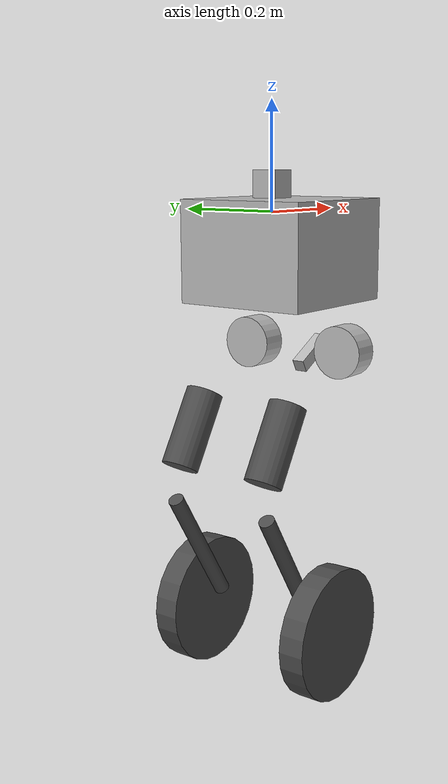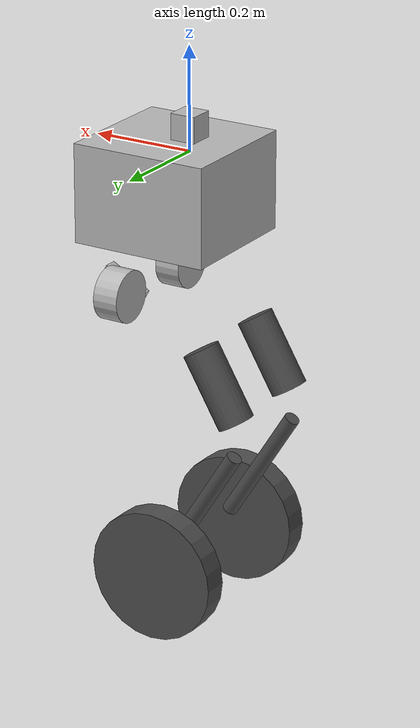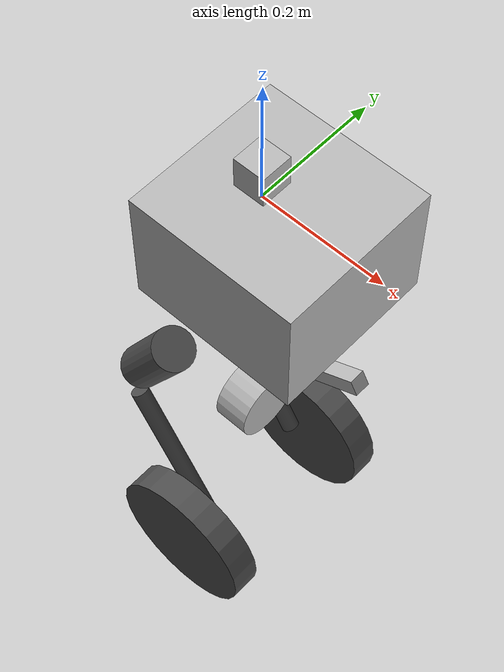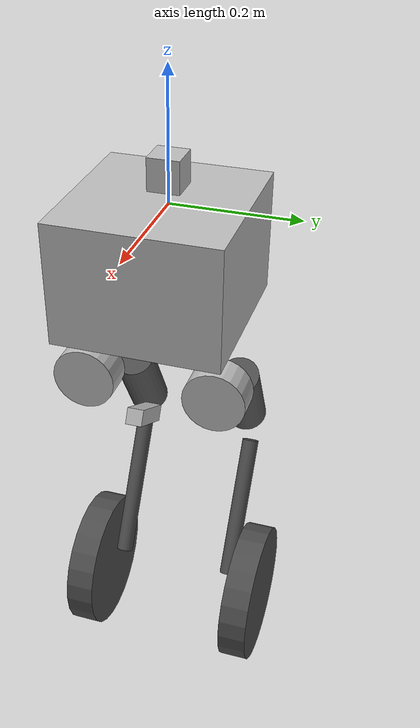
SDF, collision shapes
<sdf version='1.7'>
  <model name='wheel_biped'>
    <link name='base_Link'>
      <inertial>
        <pose>0.04576 0.00014 -0.16398 0 -0 0</pose>
        <mass>9.585</mass>
        <inertia>
          <ixx>0.14011</ixx>
          <ixy>0.000534939</ixy>
          <ixz>0.0281841</ixz>
          <iyy>0.110641</iyy>
          <iyz>-2.7278e-05</iyz>
          <izz>0.0989445</izz>
        </inertia>
      </inertial>
      <collision name='base_Link_collision'>
        <pose>0.03 0 -0.072 0 -0 0</pose>
        <geometry>
          <box>
            <size>0.27 0.26 0.19</size>
          </box>
        </geometry>
      </collision>
      <visual name='base_Link_visual'>
        <pose>0 0 0 0 -0 0</pose>
        <geometry>
          <mesh>
            <scale>1 1 1</scale>
            <uri>model://WF_TRON1A/meshes/base_Link.STL</uri>
          </mesh>
        </geometry>
      </visual>
    </link>
    <include>
        <uri>model://D435i</uri>
        <pose>0.139465 0.0047 -0.281286 2.63457 0 1.5708</pose>
        <name>D435i</name>
    </include>
    <joint name="d435i_joint" type="fixed">
        <parent>base_Link</parent>
        <child>D435i::camera_link</child>
        <pose>0.13223 0.0047 -0.26826 0 1.06378 0</pose>
    </joint>

    <link name = "lidar_Link">
      <pose>0.0 0.0 0.05 0.0 0.0 3.14159</pose>
      <inertial>
        <mass>0.1</mass>
        <inertia>
          <ixx>0.0001</ixx>
          <ixy>0.0</ixy>
          <ixz>0.0</ixz>
          <iyy>0.0001</iyy>
          <iyz>0.0</iyz>
          <izz>0.0001</izz>
        </inertia>
      </inertial>
      <collision name = "lidar_collision">
        <geometry>
          <box>
            <size>0.05 0.05 0.05</size>
          </box>
        </geometry>
      </collision>
      <visual name='lidar_visual'>
        <pose>0 0 0 0 -0 0</pose>
        <geometry>
          <mesh>
            <scale>1 1 1</scale>
            <uri>model://livox/livox_mid-360-90x.dae</uri>
          </mesh>
        </geometry>
      </visual>

      <sensor type="ray" name="laser_livox">
        <pose>0 0 0.05 0 0 3.14159</pose>
        <visualize>true</visualize>
        <always_on>True</always_on>
        <update_rate>10</update_rate>
        <!-- This ray plgin is only for visualization. -->
        <plugin name="gazebo_ros_laser_controller" filename="liblivox_laser_simulation.so">
			  <ray>
			  <scan>
				  <horizontal>
				    <samples>100</samples>
				    <resolution>1</resolution>
				    <min_angle>-3.1415926535897931</min_angle>
            <max_angle>3.1415926535897931</max_angle>
				  </horizontal>
				  <vertical>
				    <samples>50</samples>
				    <resolution>1</resolution>
				    <min_angle>-3.1415926535897931</min_angle>
            <max_angle>3.1415926535897931</max_angle>
				  </vertical>
			  </scan>
			  <range>
				  <min>0.1</min>
				  <max>40</max>
				  <resolution>1</resolution>
			  </range>
			  <noise>
				  <type>gaussian</type>
				  <mean>0.0</mean>
				  <stddev>0.0</stddev>
			  </noise>
			  </ray>
          <visualize>True</visualize>
		      <samples>20000</samples>
		      <downsample>1</downsample>
		      <csv_file_name>mid360-real-centr.csv</csv_file_name>
          <publish_pointcloud_type>2</publish_pointcloud_type>
		      <ros_topic>/livox/lidar</ros_topic>
          <frameName>base_link</frameName>
        </plugin>
      </sensor>
      <sensor name="imu_sensor" type="imu">
        <pose>0.011 0.02329 -0.04412 0 0 0</pose>
        <always_on>1</always_on>
        <update_rate>200</update_rate>
        <imu>
          <angular_velocity>
            <noise>
              <type>gaussian</type>
              <mean>0.0</mean>
              <stddev>0.002</stddev>
            </noise>
          </angular_velocity>
          <linear_acceleration>
            <noise>
              <type>gaussian</type>
              <mean>0.0</mean>
              <stddev>0.002</stddev>
            </noise>
          </linear_acceleration>
        </imu>
        <plugin name="gazebo_ros_imu_sensor" filename="libgazebo_ros_imu_sensor.so">
          <topicName>/livox/imu</topicName>
          <bodyName>lidar_Link</bodyName>
          <frameName>base_link</frameName>
          <updateRateHZ>200</updateRateHZ>
          <gaussianNoise>0.002</gaussianNoise>
        </plugin>
      </sensor>

    </link>

    <joint name="lidar_joint" type="fixed">
      <parent>base_Link</parent>
      <child>lidar_Link</child>
      <pose>0 0 0.05 0 0 0</pose>
    </joint>

    <joint name='abad_L_Joint' type='revolute'>
      <pose relative_to='base_Link'>0.05556 0.105 -0.2602 0 -0 0</pose>
      <parent>base_Link</parent>
      <child>abad_L_Link</child>
      <axis>
        <xyz>1 0 0</xyz>
        <limit>
          <lower>-0.38397</lower>
          <upper>1.39626</upper>
          <effort>80</effort>
          <velocity>15</velocity>
        </limit>
        <dynamics>
          <spring_reference>0</spring_reference>
          <spring_stiffness>0</spring_stiffness>
        </dynamics>
      </axis>
    </joint>
    <link name='abad_L_Link'>
      <pose relative_to='abad_L_Joint'>0 0 0 0 -0 0</pose>
      <inertial>
        <pose>-0.06977 0.04479 0.00057 0 -0 0</pose>
        <mass>1.469</mass>
        <inertia>
          <ixx>0.00155538</ixx>
          <ixy>0.00039778</ixy>
          <ixz>-1.31e-05</ixz>
          <iyy>0.00235925</iyy>
          <iyz>-9.8e-07</iyz>
          <izz>0.00208092</izz>
        </inertia>
      </inertial>
      <collision name='abad_L_Link_collision'>
        <pose>0.03 0 0 1.57 -0 1.57</pose>
        <geometry>
          <cylinder>
            <length>0.05</length>
            <radius>0.05</radius>
          </cylinder>
        </geometry>
      </collision>
      <visual name='abad_L_Link_visual'>
        <pose>0 0 0 0 -0 0</pose>
        <geometry>
          <mesh>
            <scale>1 1 1</scale>
            <uri>model://WF_TRON1A/meshes/abad_L_Link.STL</uri>
          </mesh>
        </geometry>
      </visual>
    </link>
    <joint name='hip_L_Joint' type='revolute'>
      <pose relative_to='abad_L_Link'>-0.077 0.0205 0 0 -0 0</pose>
      <parent>abad_L_Link</parent>
      <child>hip_L_Link</child>
      <axis>
        <xyz>0 1 0</xyz>
        <limit>
          <lower>-1.01229</lower>
          <upper>1.39626</upper>
          <effort>80</effort>
          <velocity>15</velocity>
        </limit>
        <dynamics>
          <spring_reference>0</spring_reference>
          <spring_stiffness>0</spring_stiffness>
        </dynamics>
      </axis>
    </joint>
    <link name='hip_L_Link'>
      <pose relative_to='hip_L_Joint'>0 0 0 0 -0 0</pose>
      <inertial>
        <pose>-0.02869 -0.0477 -0.03992 0 -0 0</pose>
        <mass>2.3</mass>
        <inertia>
          <ixx>0.0169373</ixx>
          <ixy>0.00164703</ixy>
          <ixz>-0.00923253</ixz>
          <iyy>0.0228533</iyy>
          <iyz>0.0022024</iyz>
          <izz>0.00933419</izz>
        </inertia>
      </inertial>
      <collision name='hip_L_Link_collision'>
        <pose>-0.1 -0.03 -0.14 0 0.53 0</pose>
        <geometry>
          <cylinder>
            <length>0.15</length>
            <radius>0.035</radius>
          </cylinder>
        </geometry>
        <surface>
          <contact>
            <ode/>
          </contact>
          <friction>
            <ode>
              <mu>0.2</mu>
              <mu2>0.2</mu2>
            </ode>
          </friction>
        </surface>
      </collision>
      <visual name='hip_L_Link_visual'>
        <pose>0 0 0 0 -0 0</pose>
        <geometry>
          <mesh>
            <scale>1 1 1</scale>
            <uri>model://WF_TRON1A/meshes/hip_L_Link.STL</uri>
          </mesh>
        </geometry>
        <material>
          <script>
            <name>Gazebo/DarkGrey</name>
            <uri>file://media/materials/scripts/gazebo.material</uri>
          </script>
        </material>
      </visual>
    </link>
    <joint name='knee_L_Joint' type='revolute'>
      <pose relative_to='hip_L_Link'>-0.15 -0.0205 -0.25981 0 -0 0</pose>
      <parent>hip_L_Link</parent>
      <child>knee_L_Link</child>
      <axis>
        <xyz>0 -1 0</xyz>
        <limit>
          <lower>-0.872665</lower>
          <upper>1.36136</upper>
          <effort>80</effort>
          <velocity>15</velocity>
        </limit>
        <dynamics>
          <spring_reference>0</spring_reference>
          <spring_stiffness>0</spring_stiffness>
        </dynamics>
      </axis>
    </joint>
    <link name='knee_L_Link'>
      <pose relative_to='knee_L_Joint'>0 0 0 0 -0 0</pose>
      <inertial>
        <pose>0.11913 0.01106 -0.20363 0 -0 0</pose>
        <mass>1.49</mass>
        <inertia>
          <ixx>0.0132328</ixx>
          <ixy>-0.00043546</ixy>
          <ixz>0.00693569</ixz>
          <iyy>0.0176614</iyy>
          <iyz>0.00079087</iyz>
          <izz>0.00501698</izz>
        </inertia>
      </inertial>
      <collision name='knee_L_Link_collision'>
        <pose>0.078 0 -0.12 0 -0.55 0</pose>
        <geometry>
          <cylinder>
            <length>0.26</length>
            <radius>0.015</radius>
          </cylinder>
        </geometry>
        <surface>
          <contact>
            <ode>
              <kp>1e+06</kp>
              <kd>100</kd>
            </ode>
          </contact>
          <friction>
            <ode>
              <mu>0.2</mu>
              <mu2>0.2</mu2>
            </ode>
          </friction>
        </surface>
      </collision>
      <visual name='knee_L_Link_visual'>
        <pose>0 0 0 0 -0 0</pose>
        <geometry>
          <mesh>
            <scale>1 1 1</scale>
            <uri>model://WF_TRON1A/meshes/knee_L_Link.STL</uri>
          </mesh>
        </geometry>
        <material>
          <script>
            <name>Gazebo/DarkGrey</name>
            <uri>file://media/materials/scripts/gazebo.material</uri>
          </script>
        </material>
      </visual>
      <self_collide>0</self_collide>
    </link>
    <joint name='wheel_L_Joint' type='revolute'>
      <pose relative_to='knee_L_Link'>0.15 0.0435 -0.25981 0 -0 0</pose>
      <parent>knee_L_Link</parent>
      <child>wheel_L_Link</child>
      <axis>
        <xyz>0 1 0</xyz>
        <limit>
          <lower>-1e+06</lower>
          <upper>1e+06</upper>
          <effort>40</effort>
          <velocity>40</velocity>
        </limit>
        <dynamics>
          <damping>0</damping>
          <friction>0.01</friction>
          <spring_reference>0</spring_reference>
          <spring_stiffness>0</spring_stiffness>
        </dynamics>
      </axis>
    </joint>
    <link name='wheel_L_Link'>
      <pose relative_to='wheel_L_Joint'>0 0 0 0 -0 0</pose>
      <inertial>
        <pose>3e-05 0.00807 -2e-05 0 -0 0</pose>
        <mass>1.08</mass>
        <inertia>
          <ixx>0.00515512</ixx>
          <ixy>1e-08</ixy>
          <ixz>-9.7e-07</ixz>
          <iyy>0.00974272</iyy>
          <iyz>-1e-08</iyz>
          <izz>0.005154</izz>
        </inertia>
      </inertial>
      <collision name='wheel_L_Link_collision'>
        <pose>0 0 0 1.5708 -0 0</pose>
        <geometry>
          <cylinder>
            <length>0.05</length>
            <radius>0.127</radius>
          </cylinder>
        </geometry>
        <surface>
          <contact>
            <ode>
              <kp>1e+06</kp>
              <kd>1</kd>
            </ode>
          </contact>
          <friction>
            <ode>
              <mu>0.6</mu>
              <mu2>0.6</mu2>
            </ode>
          </friction>
        </surface>
      </collision>
      <visual name='wheel_L_Link_visual'>
        <pose>0 0 0 0 -0 0</pose>
        <geometry>
          <mesh>
            <scale>1 1 1</scale>
            <uri>model://WF_TRON1A/meshes/wheel_L_Link.STL</uri>
          </mesh>
        </geometry>
        <material>
          <script>
            <name>Gazebo/DarkGrey</name>
            <uri>file://media/materials/scripts/gazebo.material</uri>
          </script>
        </material>
      </visual>
      <self_collide>1</self_collide>
    </link>
    <joint name='abad_R_Joint' type='revolute'>
      <pose relative_to='base_Link'>0.05556 -0.105 -0.2602 0 -0 0</pose>
      <parent>base_Link</parent>
      <child>abad_R_Link</child>
      <axis>
        <xyz>1 0 0</xyz>
        <limit>
          <lower>-1.39626</lower>
          <upper>0.38397</upper>
          <effort>80</effort>
          <velocity>15</velocity>
        </limit>
        <dynamics>
          <spring_reference>0</spring_reference>
          <spring_stiffness>0</spring_stiffness>
        </dynamics>
      </axis>
    </joint>
    <link name='abad_R_Link'>
      <pose relative_to='abad_R_Joint'>0 0 0 0 -0 0</pose>
      <inertial>
        <pose>-0.06977 -0.04479 0.00057 0 -0 0</pose>
        <mass>1.469</mass>
        <inertia>
          <ixx>0.00155538</ixx>
          <ixy>-0.00039778</ixy>
          <ixz>-1.31e-05</ixz>
          <iyy>0.00235925</iyy>
          <iyz>9.8e-07</iyz>
          <izz>0.00208092</izz>
        </inertia>
      </inertial>
      <collision name='abad_R_Link_collision'>
        <pose>0.03 0 0 1.57 -0 1.57</pose>
        <geometry>
          <cylinder>
            <length>0.05</length>
            <radius>0.05</radius>
          </cylinder>
        </geometry>
      </collision>
      <visual name='abad_R_Link_visual'>
        <pose>0 0 0 0 -0 0</pose>
        <geometry>
          <mesh>
            <scale>1 1 1</scale>
            <uri>model://WF_TRON1A/meshes/abad_R_Link.STL</uri>
          </mesh>
        </geometry>
      </visual>
    </link>
    <joint name='hip_R_Joint' type='revolute'>
      <pose relative_to='abad_R_Link'>-0.077 -0.0205 0 0 -0 0</pose>
      <parent>abad_R_Link</parent>
      <child>hip_R_Link</child>
      <axis>
        <xyz>0 -1 0</xyz>
        <limit>
          <lower>-1.39626</lower>
          <upper>1.01229</upper>
          <effort>80</effort>
          <velocity>15</velocity>
        </limit>
        <dynamics>
          <spring_reference>0</spring_reference>
          <spring_stiffness>0</spring_stiffness>
        </dynamics>
      </axis>
    </joint>
    <link name='hip_R_Link'>
      <pose relative_to='hip_R_Joint'>0 0 0 0 -0 0</pose>
      <inertial>
        <pose>-0.02869 0.0477 -0.03992 0 -0 0</pose>
        <mass>2.3</mass>
        <inertia>
          <ixx>0.0169373</ixx>
          <ixy>-0.00164703</ixy>
          <ixz>-0.00923253</ixz>
          <iyy>0.0228533</iyy>
          <iyz>-0.0022024</iyz>
          <izz>0.00933419</izz>
        </inertia>
      </inertial>
      <collision name='hip_R_Link_collision'>
        <pose>-0.1 0.03 -0.14 0 0.53 0</pose>
        <geometry>
          <cylinder>
            <length>0.15</length>
            <radius>0.035</radius>
          </cylinder>
        </geometry>
        <surface>
          <contact>
            <ode/>
          </contact>
          <friction>
            <ode>
              <mu>0.2</mu>
              <mu2>0.2</mu2>
            </ode>
          </friction>
        </surface>
      </collision>
      <visual name='hip_R_Link_visual'>
        <pose>0 0 0 0 -0 0</pose>
        <geometry>
          <mesh>
            <scale>1 1 1</scale>
            <uri>model://WF_TRON1A/meshes/hip_R_Link.STL</uri>
          </mesh>
        </geometry>
        <material>
          <script>
            <name>Gazebo/DarkGrey</name>
            <uri>file://media/materials/scripts/gazebo.material</uri>
          </script>
        </material>
      </visual>
    </link>
    <joint name='knee_R_Joint' type='revolute'>
      <pose relative_to='hip_R_Link'>-0.15 0.0205 -0.25981 0 -0 0</pose>
      <parent>hip_R_Link</parent>
      <child>knee_R_Link</child>
      <axis>
        <xyz>0 1 0</xyz>
        <limit>
          <lower>-1.36136</lower>
          <upper>0.872665</upper>
          <effort>80</effort>
          <velocity>15</velocity>
        </limit>
        <dynamics>
          <spring_reference>0</spring_reference>
          <spring_stiffness>0</spring_stiffness>
        </dynamics>
      </axis>
    </joint>
    <link name='knee_R_Link'>
      <pose relative_to='knee_R_Joint'>0 0 0 0 -0 0</pose>
      <inertial>
        <pose>0.11913 -0.01106 -0.20363 0 -0 0</pose>
        <mass>1.49</mass>
        <inertia>
          <ixx>0.0132328</ixx>
          <ixy>0.00043546</ixy>
          <ixz>0.00693569</ixz>
          <iyy>0.0176614</iyy>
          <iyz>-0.00079087</iyz>
          <izz>0.00501698</izz>
        </inertia>
      </inertial>
      <collision name='knee_R_Link_collision'>
        <pose>0.078 0 -0.12 0 -0.55 0</pose>
        <geometry>
          <cylinder>
            <length>0.26</length>
            <radius>0.015</radius>
          </cylinder>
        </geometry>
        <surface>
          <contact>
            <ode>
              <kp>1e+06</kp>
              <kd>100</kd>
            </ode>
          </contact>
          <friction>
            <ode>
              <mu>0.2</mu>
              <mu2>0.2</mu2>
            </ode>
          </friction>
        </surface>
      </collision>
      <visual name='knee_R_Link_visual'>
        <pose>0 0 0 0 -0 0</pose>
        <geometry>
          <mesh>
            <scale>1 1 1</scale>
            <uri>model://WF_TRON1A/meshes/knee_R_Link.STL</uri>
          </mesh>
        </geometry>
        <material>
          <script>
            <name>Gazebo/DarkGrey</name>
            <uri>file://media/materials/scripts/gazebo.material</uri>
          </script>
        </material>
      </visual>
      <self_collide>0</self_collide>
    </link>
    <joint name='wheel_R_Joint' type='revolute'>
      <pose relative_to='knee_R_Link'>0.15 -0.0435 -0.25981 0 -0 0</pose>
      <parent>knee_R_Link</parent>
      <child>wheel_R_Link</child>
      <axis>
        <xyz>0 1 0</xyz>
        <limit>
          <lower>-1e+06</lower>
          <upper>1e+06</upper>
          <effort>40</effort>
          <velocity>40</velocity>
        </limit>
        <dynamics>
          <damping>0</damping>
          <friction>0.01</friction>
          <spring_reference>0</spring_reference>
          <spring_stiffness>0</spring_stiffness>
        </dynamics>
      </axis>
    </joint>
    <link name='wheel_R_Link'>
      <pose relative_to='wheel_R_Joint'>0 0 0 0 -0 0</pose>
      <inertial>
        <pose>3e-05 -0.00807 -2e-05 0 -0 0</pose>
        <mass>1.08</mass>
        <inertia>
          <ixx>0.00515512</ixx>
          <ixy>-1e-08</ixy>
          <ixz>-9.7e-07</ixz>
          <iyy>0.00974272</iyy>
          <iyz>1e-08</iyz>
          <izz>0.005154</izz>
        </inertia>
      </inertial>
      <collision name='wheel_R_Link_collision'>
        <pose>0 0 0 1.5708 -0 0</pose>
        <geometry>
          <cylinder>
            <length>0.05</length>
            <radius>0.127</radius>
          </cylinder>
        </geometry>
        <surface>
          <contact>
            <ode>
              <kp>1e+06</kp>
              <kd>1</kd>
            </ode>
          </contact>
          <friction>
            <ode>
              <mu>0.6</mu>
              <mu2>0.6</mu2>
            </ode>
          </friction>
        </surface>
      </collision>
      <visual name='wheel_R_Link_visual'>
        <pose>0 0 0 0 -0 0</pose>
        <geometry>
          <mesh>
            <scale>1 1 1</scale>
            <uri>model://WF_TRON1A/meshes/wheel_R_Link.STL</uri>
          </mesh>
        </geometry>
        <material>
          <script>
            <name>Gazebo/DarkGrey</name>
            <uri>file://media/materials/scripts/gazebo.material</uri>
          </script>
        </material>
      </visual>
      <self_collide>1</self_collide>
    </link>
    <joint name='limx_imu_joint' type='revolute'>
      <pose relative_to='base_Link'>0 0 0 0 -0 0</pose>
      <parent>base_Link</parent>
      <child>limx_imu</child>
      <axis>
        <limit>
          <lower>0</lower>
          <upper>0</upper>
        </limit>
        <dynamics>
          <damping>0</damping>
          <friction>0</friction>
          <spring_reference>0</spring_reference>
          <spring_stiffness>0</spring_stiffness>
        </dynamics>
        <xyz>0 0 1</xyz>
      </axis>
      <physics>
        <ode>
          <limit>
            <cfm>0</cfm>
            <erp>0.2</erp>
          </limit>
        </ode>
      </physics>
    </joint>
    <link name='limx_imu'>
      <pose relative_to='limx_imu_joint'>0 0 0 0 -0 0</pose>
      <inertial>
        <pose>0 0 0 0 -0 0</pose>
        <mass>0.01</mass>
        <inertia>
          <ixx>1e-06</ixx>
          <ixy>0</ixy>
          <ixz>0</ixz>
          <iyy>1e-06</iyy>
          <iyz>0</iyz>
          <izz>1e-06</izz>
        </inertia>
      </inertial>
      <visual name='limx_imu_visual'>
        <pose>0 0 0 0 -0 0</pose>
        <geometry>
          <box>
            <size>0.015 0.015 0.004</size>
          </box>
        </geometry>
        <material>
          <script>
            <name>Gazebo/Orange</name>
            <uri>file://media/materials/scripts/gazebo.material</uri>
          </script>
        </material>
      </visual>
    </link>

    <plugin name='gazebo_ros_control' filename='libpointfoot_hw_sim.so'>
      <robotNamespace>/</robotNamespace>
      <robotParam>robot_description</robotParam>
      <robotSimType>pointfoot_gazebo/PointFootHWSim</robotSimType>
    </plugin>
    <static>0</static>
    <plugin name='p3d_base_controller' filename='libgazebo_ros_p3d.so'>
      <alwaysOn>1</alwaysOn>
      <updateRate>1000.0</updateRate>
      <bodyName>base_Link</bodyName>
      <topicName>ground_truth/state</topicName>
      <gaussianNoise>0</gaussianNoise>
      <frameName>world</frameName>
      <xyzOffsets>0 0 0</xyzOffsets>
      <rpyOffsets>0 0 0</rpyOffsets>
    </plugin>
  </model>
</sdf>

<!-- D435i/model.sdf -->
<sdf version="1.6">
  <model name="D435i">
    <link name="camera_link">
      <inertial>
        <mass>0.0564</mass>
        <inertia>
          <ixx>4.1e-05</ixx>
          <ixy>0</ixy>
          <ixz>0</ixz>
          <iyy>5.9e-06</iyy>
          <iyz>0</iyz>
          <izz>5.9e-06</izz>
        </inertia>
      </inertial>
      <self_collide>0</self_collide>
      <kinematic>0</kinematic>
      <gravity>1</gravity>
      <visual name="visual">
        <geometry>
         <mesh>
            <uri>model://D435i/meshes/realsense_d435.stl</uri>
          </mesh>
        </geometry>
      </visual>
      <collision name='collision'>
        <pose>0 0 0 0 0 0</pose>
        <geometry>
          <box>
            <size>0.02505 0.090 0.025</size>
          </box>
        </geometry>
        <surface>
          <friction>
            <ode>
              <mu>1</mu>
              <mu2>1</mu2>
              <fdir1>0 0 0</fdir1>
              <slip1>0</slip1>
              <slip2>0</slip2>
            </ode>
          </friction>
          <bounce>
            <restitution_coefficient>0</restitution_coefficient>
            <threshold>1e+06</threshold>
          </bounce>
          <contact>
            <collide_without_contact>0</collide_without_contact>
            <collide_without_contact_bitmask>1</collide_without_contact_bitmask>
            <collide_bitmask>1</collide_bitmask>
            <ode>
              <soft_cfm>0</soft_cfm>
              <soft_erp>0.2</soft_erp>
              <kp>1e+13</kp>
              <kd>1</kd>
              <max_vel>0.01</max_vel>
              <min_depth>0</min_depth>
            </ode>
            <bullet>
              <split_impulse>1</split_impulse>
              <split_impulse_penetration_threshold>-0.01</split_impulse_penetration_threshold>
              <soft_cfm>0</soft_cfm>
              <soft_erp>0.2</soft_erp>
              <kp>1e+13</kp>
              <kd>1</kd>
            </bullet>
          </contact>
        </surface>
      </collision>
    </link>

    <link name="imu_link">
      <pose>0 0 0 0 0 0</pose>
      <inertial>
        <pose frame=''>0 0 0 0 -0 0</pose>
        <mass>0.0015</mass>
        <inertia>
          <ixx>1e-06</ixx>
          <ixy>0</ixy>
          <ixz>0</ixz>
          <iyy>1e-06</iyy>
          <iyz>0</iyz>
          <izz>1e-06</izz>
        </inertia>
      </inertial>
      <sensor name="imu_sensor" type="imu">
        <always_on>true</always_on>
        <update_rate>100</update_rate>
        <visualize>true</visualize>
        <topic>__default_topic__</topic>
        <plugin filename="libgazebo_ros_imu_sensor.so" name="imu_plugin">
          <robotNamespace/>
          <topicName>/camera/imu</topicName>
          <bodyName>imu_link</bodyName>
          <updateRateHZ>100.0</updateRateHZ>
          <gaussianNoise>0.0</gaussianNoise>
          <xyzOffset>0 0 0</xyzOffset>
          <rpyOffset>0 0 0</rpyOffset>
          <frameName>imu_link</frameName>
          <initialOrientationAsReference>false</initialOrientationAsReference>
        </plugin>
      </sensor>
    </link>
     <joint name='camera_imu_joint' type='revolute'>
      <child>imu_link</child>
      <parent>camera_link</parent>
      <axis>
        <xyz>1 0 0</xyz>
        <limit>
          <lower>0</lower>
          <upper>0</upper>
          <effort>0</effort>
          <velocity>0</velocity>
        </limit>
        <dynamics>
          <spring_reference>0</spring_reference>
          <spring_stiffness>0</spring_stiffness>
        </dynamics>
        <use_parent_model_frame>1</use_parent_model_frame>
      </axis>
    </joint>

    <link name="camera_color_frame">
      <pose>0.0325 0 0 3.14 -1.57 1.57</pose>
      <inertial>
        <pose frame=''>0 0 0 0 -0 0</pose>
        <mass>0.0015</mass>
        <inertia>
          <ixx>1e-06</ixx>
          <ixy>0</ixy>
          <ixz>0</ixz>
          <iyy>1e-06</iyy>
          <iyz>0</iyz>
          <izz>1e-06</izz>
        </inertia>
      </inertial>
      <sensor name="color" type="camera">
        <camera name="color">
          <horizontal_fov>1.211</horizontal_fov>
          <image>
            <width>640</width>
            <height>480</height>
            <format>RGB_INT8</format>
          </image>
          <clip>
            <near>0.1</near>
            <far>100</far>
          </clip>
          <noise>
            <type>gaussian</type>
            <mean>0.0</mean>
            <stddev>0.007</stddev>
          </noise>
        </camera>
        <always_on>1</always_on>
        <update_rate>30</update_rate>
        <visualize>1</visualize>
      </sensor>
    </link>
    <joint name='camera_color_joint' type='revolute'>
      <child>camera_color_frame</child>
      <parent>camera_link</parent>
      <axis>
        <xyz>1 0 0</xyz>
        <limit>
          <lower>0</lower>
          <upper>0</upper>
          <effort>0</effort>
          <velocity>0</velocity>
        </limit>
        <dynamics>
          <spring_reference>0</spring_reference>
          <spring_stiffness>0</spring_stiffness>
        </dynamics>
        <use_parent_model_frame>1</use_parent_model_frame>
      </axis>
    </joint>

    <link name="camera_ired1_frame">
      <pose>0.02 0 0 3.14 -1.57 1.57</pose>
      <inertial>
        <pose frame=''>0 0 0 0 -0 0</pose>
        <mass>0.0015</mass>
        <inertia>
          <ixx>1e-06</ixx>
          <ixy>0</ixy>
          <ixz>0</ixz>
          <iyy>1e-06</iyy>
          <iyz>0</iyz>
          <izz>1e-06</izz>
        </inertia>
      </inertial>
      <sensor name="ired1" type="camera">
        <camera name="ired1">
          <horizontal_fov>1.571</horizontal_fov>
          <image>
            <width>640</width>
            <height>480</height>
            <format>L_INT8</format>
          </image>
          <clip>
            <near>0.1</near>
            <far>100</far>
          </clip>
          <noise>
            <type>gaussian</type>
            <mean>0.0</mean>
            <stddev>0.007</stddev>
          </noise>
        </camera>
        <always_on>1</always_on>
        <update_rate>30</update_rate>
        <visualize>0</visualize>
      </sensor>
    </link>
    <joint name='camera_ired1_joint' type='revolute'>
      <child>camera_ired1_frame</child>
      <parent>camera_link</parent>
      <axis>
        <xyz>1 0 0</xyz>
        <limit>
          <lower>0</lower>
          <upper>0</upper>
          <effort>0</effort>
          <velocity>0</velocity>
        </limit>
        <dynamics>
          <spring_reference>0</spring_reference>
          <spring_stiffness>0</spring_stiffness>
        </dynamics>
        <use_parent_model_frame>1</use_parent_model_frame>
      </axis>
    </joint>

    <link name="camera_ired2_frame">
      <pose>-0.03 0 0 3.14 -1.57 1.57</pose>
      <inertial>
        <pose frame=''>0 0 0 0 -0 0</pose>
        <mass>0.0015</mass>
        <inertia>
          <ixx>1e-06</ixx>
          <ixy>0</ixy>
          <ixz>0</ixz>
          <iyy>1e-06</iyy>
          <iyz>0</iyz>
          <izz>1e-06</izz>
        </inertia>
      </inertial>
      <sensor name="ired2" type="camera">
        <camera name="ired2">
          <horizontal_fov>1.571</horizontal_fov>
          <image>
            <width>640</width>
            <height>480</height>
            <format>L_INT8</format>
          </image>
          <clip>
            <near>0.1</near>
            <far>100</far>
          </clip>
          <noise>
            <type>gaussian</type>
            <mean>0.0</mean>
            <stddev>0.007</stddev>
          </noise>
        </camera>
        <always_on>1</always_on>
        <update_rate>30</update_rate>
        <visualize>0</visualize>
      </sensor>
    </link>
    <joint name='camera_ired2_joint' type='revolute'>
      <child>camera_ired2_frame</child>
      <parent>camera_link</parent>
      <axis>
        <xyz>1 0 0</xyz>
        <limit>
          <lower>0</lower>
          <upper>0</upper>
          <effort>0</effort>
          <velocity>0</velocity>
        </limit>
        <dynamics>
          <spring_reference>0</spring_reference>
          <spring_stiffness>0</spring_stiffness>
        </dynamics>
        <use_parent_model_frame>1</use_parent_model_frame>
      </axis>
    </joint>

    <link name="camera_depth_frame">
      <pose>0.0325 0 0 3.14 -1.57 1.57</pose>
      <inertial>
        <pose frame=''>0 0 0 0 -0 0</pose>
        <mass>0.0015</mass>
        <inertia>
          <ixx>1e-06</ixx>
          <ixy>0</ixy>
          <ixz>0</ixz>
          <iyy>1e-06</iyy>
          <iyz>0</iyz>
          <izz>1e-06</izz>
        </inertia>
      </inertial>
      <sensor name="depth" type="depth">
        <camera name="depth">
          <horizontal_fov>1.571</horizontal_fov>
          <image>
            <width>640</width>
            <height>480</height>
          </image>
          <clip>
            <near>0.1</near>
            <far>100</far>
          </clip>
          <noise>
            <type>gaussian</type>
            <mean>0.0</mean>
            <stddev>0.007</stddev>
          </noise>
        </camera>
        <always_on>1</always_on>
        <update_rate>30</update_rate>
        <visualize>0</visualize>

      </sensor>
    </link>
    <joint name='camera_depth_joint' type='revolute'>
      <child>camera_depth_frame</child>
      <parent>camera_link</parent>
      <axis>
        <xyz>1 0 0</xyz>
        <limit>
          <lower>0</lower>
          <upper>0</upper>
          <effort>0</effort>
          <velocity>0</velocity>
        </limit>
        <dynamics>
          <spring_reference>0</spring_reference>
          <spring_stiffness>0</spring_stiffness>
        </dynamics>
        <use_parent_model_frame>1</use_parent_model_frame>
      </axis>
    </joint>

    <plugin name="camera" filename="librealsense_gazebo_plugin.so">
       <depthUpdateRate>30</depthUpdateRate>
       <colorUpdateRate>30</colorUpdateRate>
       <infraredUpdateRate>30</infraredUpdateRate>
       <depthTopicName>depth/image_raw</depthTopicName>
       <depthCameraInfoTopicName>depth/camera_info</depthCameraInfoTopicName>
       <colorTopicName>color/image_raw</colorTopicName>
       <colorCameraInfoTopicName>color/camera_info</colorCameraInfoTopicName>
       <infrared1TopicName>infra1/image_raw</infrared1TopicName>
       <infrared1CameraInfoTopicName>infra1/camera_info</infrared1CameraInfoTopicName>
       <infrared2TopicName>infra2/image_raw</infrared2TopicName>
       <infrared2CameraInfoTopicName>infra2/camera_info</infrared2CameraInfoTopicName>
       <colorOpticalframeName>camera_color_frame</colorOpticalframeName>
       <depthOpticalframeName>camera_depth_frame</depthOpticalframeName>
       <infrared1OpticalframeName>camera_ired1_frame</infrared1OpticalframeName>
       <infrared2OpticalframeName>camera_ired2_frame</infrared2OpticalframeName>
       <rangeMinDepth>0.2</rangeMinDepth>
       <rangeMaxDepth>10.0</rangeMaxDepth>
       <pointCloud>false</pointCloud>
       <pointCloudTopicName>depth/color/points</pointCloudTopicName>
       <pointCloudCutoff>0.25</pointCloudCutoff>
       <pointCloudCutoffMax>9.0</pointCloudCutoffMax>
     </plugin>

  </model>
</sdf>
